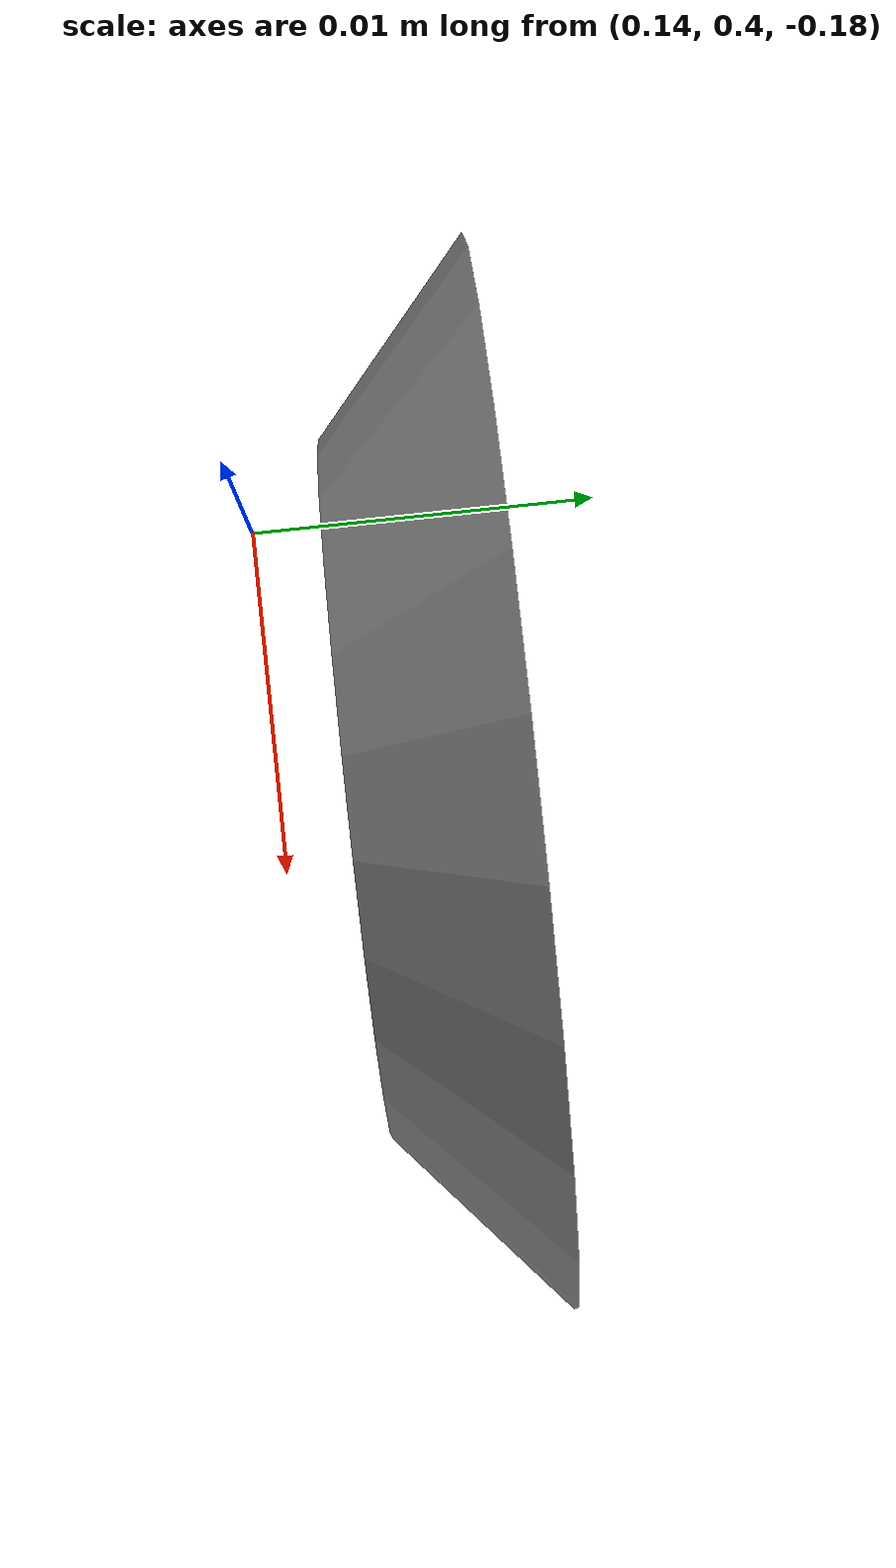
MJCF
<mujoco model="original-99">
  <default>
    <default class="visual">
      <geom group="2" type="mesh" contype="0" conaffinity="0"/>
    </default>
    <default class="collision">
      <geom group="3" type="mesh"/>
    </default>
  </default>
  <asset>
    <material name="material_0_0" specular="0.06666666666666667" shininess="0.03" rgba="0.5294117647058824 0.5294117647058824 0.5294117647058824 1"/>
    <mesh file="original-99.obj"/>
  </asset>
  <worldbody>
    <body name="original-99">
      <geom material="material_0_0" mesh="original-99" class="visual"/>
      <geom mesh="original-99" class="collision"/>
    </body>
  </worldbody>
</mujoco>
